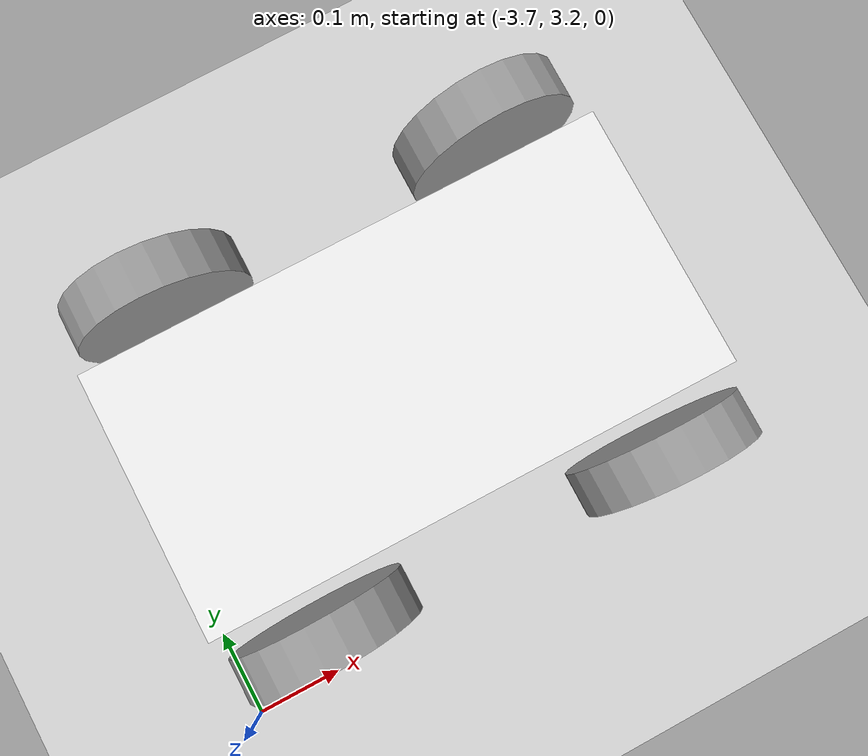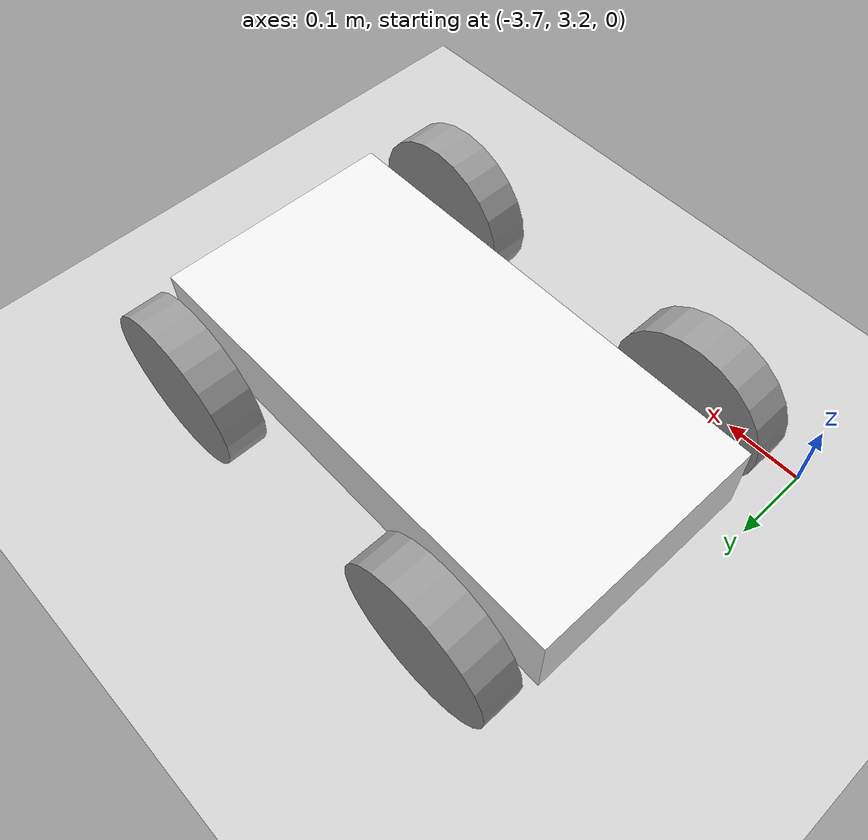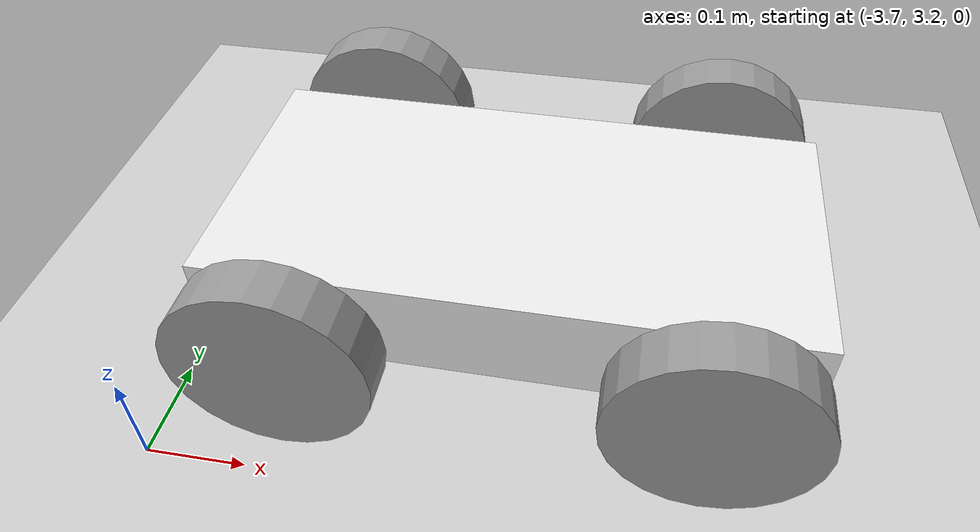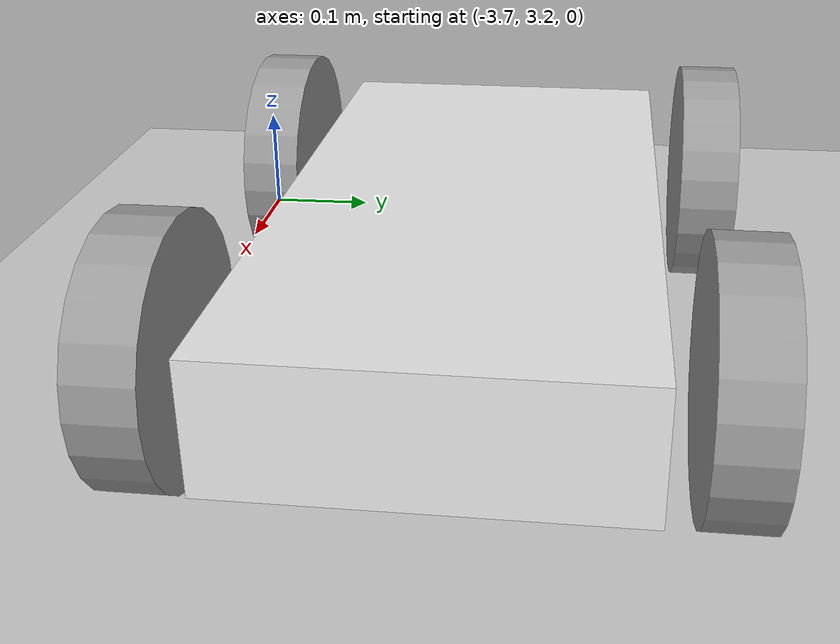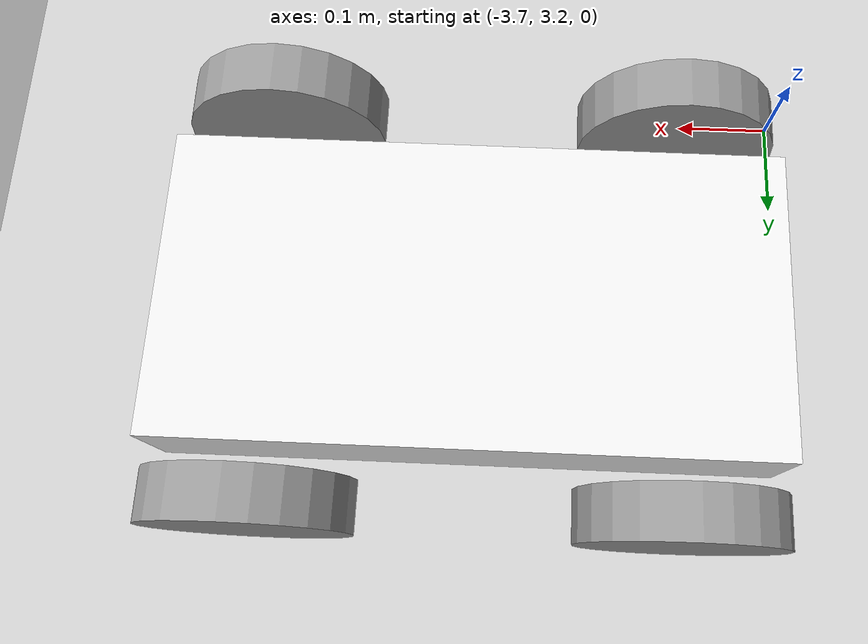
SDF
<sdf version="1.6">
 <world name="default">
  <model name="ground_plane">
   <static>1</static>
   <link name="link">
    <collision name="collision">
     <geometry><plane><normal>0 0 1</normal><size>100 100</size></plane></geometry>
     <surface>
      <contact><collide_bitmask>65535</collide_bitmask></contact>
      <friction><ode><mu>100</mu><mu2>50</mu2></ode></friction>
     </surface>
    </collision>
    <visual name="visual">
     <cast_shadows>0</cast_shadows>
     <geometry><plane><normal>0 0 1</normal><size>100 100</size></plane></geometry>
     <material>
      <script><uri>file://media/materials/scripts/gazebo.material</uri><name>Gazebo/Grey</name></script>
     </material>
    </visual>
   </link>
  </model>
  <model name="simple_4_wheeled_white_0">
   <link name="chassis">
    <pose>-0 0 0.1 0 -0 0</pose>
    <inertial>
     <mass>0.5</mass>
     <inertia>
      <ixx>0.166667</ixx>
      <ixy>0</ixy>
      <ixz>0</ixz>
      <iyy>0.166667</iyy>
      <iyz>0</iyz>
      <izz>0.166667</izz>
     </inertia>
    </inertial>
    <visual name="visual">
     <geometry><box><size>0.6 0.3 0.1</size></box></geometry>
     <material>
      <lighting>1</lighting>
      <script><uri>file://media/materials/scripts/gazebo.material</uri><name>Gazebo/White</name></script>
      <shader type="pixel"><normal_map>__default__</normal_map></shader>
      <ambient>0.9 0.9 0.9 1</ambient>
      <diffuse>0.9 0.9 0.9 1</diffuse>
      <specular>0.9 0.9 0.9 1</specular>
      <emissive>0.9 0.9 0.9 1</emissive>
     </material>
    </visual>
    <collision name="collision">
     <geometry><box><size>0.6 0.3 0.1</size></box></geometry>
     <surface>
      <friction>
       <ode><mu>1</mu><mu2>1</mu2><fdir1>0 0 0</fdir1><slip1>0</slip1><slip2>0</slip2></ode>
       <torsional>
        <coefficient>1</coefficient>
        <patch_radius>0</patch_radius>
        <surface_radius>0</surface_radius>
        <use_patch_radius>1</use_patch_radius>
        <ode><slip>0</slip></ode>
       </torsional>
      </friction>
      <bounce><restitution_coefficient>0</restitution_coefficient><threshold>1e+06</threshold></bounce>
      <contact>
       <collide_without_contact>0</collide_without_contact>
       <collide_without_contact_bitmask>1</collide_without_contact_bitmask>
       <collide_bitmask>1</collide_bitmask>
       <ode>
        <soft_cfm>0</soft_cfm>
        <soft_erp>0.2</soft_erp>
        <kp>1e+13</kp>
        <kd>1</kd>
        <max_vel>0.01</max_vel>
        <min_depth>0</min_depth>
       </ode>
       <bullet>
        <split_impulse>1</split_impulse>
        <split_impulse_penetration_threshold>-0.01</split_impulse_penetration_threshold>
        <soft_cfm>0</soft_cfm>
        <soft_erp>0.2</soft_erp>
        <kp>1e+13</kp>
        <kd>1</kd>
       </bullet>
      </contact>
     </surface>
    </collision>
   </link>
   <link name="front_left">
    <pose>0.2 0.2 0.1 1.57 -0 0</pose>
    <inertial>
     <mass>0.1</mass>
     <inertia><ixx>0.145833</ixx><ixy>0</ixy><ixz>0</ixz><iyy>0.145833</iyy><iyz>0</iyz><izz>0.125</izz></inertia>
    </inertial>
    <visual name="visual">
     <geometry><cylinder><radius>0.1</radius><length>0.05</length></cylinder></geometry>
     <material>
      <lighting>1</lighting>
      <script><uri>file://media/materials/scripts/gazebo.material</uri><name>Gazebo/Grey</name></script>
      <shader type="pixel"><normal_map>__default__</normal_map></shader>
      <ambient>0.3 0.3 0.3 1</ambient>
      <diffuse>0.7 0.7 0.7 1</diffuse>
      <specular>0.01 0.01 0.01 1</specular>
      <emissive>0 0 0 1</emissive>
     </material>
    </visual>
    <collision name="collision">
     <geometry><cylinder><radius>0.1</radius><length>0.05</length></cylinder></geometry>
     <surface>
      <friction>
       <ode><mu>1</mu><mu2>1</mu2><fdir1>0 0 0</fdir1><slip1>0</slip1><slip2>0</slip2></ode>
       <torsional>
        <coefficient>1</coefficient>
        <patch_radius>0</patch_radius>
        <surface_radius>0</surface_radius>
        <use_patch_radius>1</use_patch_radius>
        <ode><slip>0</slip></ode>
       </torsional>
      </friction>
      <bounce><restitution_coefficient>0</restitution_coefficient><threshold>1e+06</threshold></bounce>
      <contact>
       <collide_without_contact>0</collide_without_contact>
       <collide_without_contact_bitmask>1</collide_without_contact_bitmask>
       <collide_bitmask>1</collide_bitmask>
       <ode>
        <soft_cfm>0</soft_cfm>
        <soft_erp>0.2</soft_erp>
        <kp>1e+13</kp>
        <kd>1</kd>
        <max_vel>0.01</max_vel>
        <min_depth>0</min_depth>
       </ode>
       <bullet>
        <split_impulse>1</split_impulse>
        <split_impulse_penetration_threshold>-0.01</split_impulse_penetration_threshold>
        <soft_cfm>0</soft_cfm>
        <soft_erp>0.2</soft_erp>
        <kp>1e+13</kp>
        <kd>1</kd>
       </bullet>
      </contact>
     </surface>
    </collision>
   </link>
   <link name="front_right">
    <pose>0.2 -0.2 0.1 1.57 -0 0</pose>
    <inertial>
     <mass>0.1</mass>
     <inertia><ixx>0.145833</ixx><ixy>0</ixy><ixz>0</ixz><iyy>0.145833</iyy><iyz>0</iyz><izz>0.125</izz></inertia>
    </inertial>
    <visual name="visual">
     <geometry><cylinder><radius>0.1</radius><length>0.05</length></cylinder></geometry>
     <material>
      <lighting>1</lighting>
      <script><uri>file://media/materials/scripts/gazebo.material</uri><name>Gazebo/Grey</name></script>
      <shader type="pixel"><normal_map>__default__</normal_map></shader>
      <ambient>0.3 0.3 0.3 1</ambient>
      <diffuse>0.7 0.7 0.7 1</diffuse>
      <specular>0.01 0.01 0.01 1</specular>
      <emissive>0 0 0 1</emissive>
     </material>
    </visual>
    <collision name="collision">
     <geometry><cylinder><radius>0.1</radius><length>0.05</length></cylinder></geometry>
     <surface>
      <friction>
       <ode><mu>1</mu><mu2>1</mu2><fdir1>0 0 0</fdir1><slip1>0</slip1><slip2>0</slip2></ode>
       <torsional>
        <coefficient>1</coefficient>
        <patch_radius>0</patch_radius>
        <surface_radius>0</surface_radius>
        <use_patch_radius>1</use_patch_radius>
        <ode><slip>0</slip></ode>
       </torsional>
      </friction>
      <bounce><restitution_coefficient>0</restitution_coefficient><threshold>1e+06</threshold></bounce>
      <contact>
       <collide_without_contact>0</collide_without_contact>
       <collide_without_contact_bitmask>1</collide_without_contact_bitmask>
       <collide_bitmask>1</collide_bitmask>
       <ode>
        <soft_cfm>0</soft_cfm>
        <soft_erp>0.2</soft_erp>
        <kp>1e+13</kp>
        <kd>1</kd>
        <max_vel>0.01</max_vel>
        <min_depth>0</min_depth>
       </ode>
       <bullet>
        <split_impulse>1</split_impulse>
        <split_impulse_penetration_threshold>-0.01</split_impulse_penetration_threshold>
        <soft_cfm>0</soft_cfm>
        <soft_erp>0.2</soft_erp>
        <kp>1e+13</kp>
        <kd>1</kd>
       </bullet>
      </contact>
     </surface>
    </collision>
   </link>
   <link name="rear_left">
    <pose>-0.2 0.2 0.1 1.57 -0 0</pose>
    <inertial>
     <mass>0.1</mass>
     <inertia><ixx>0.145833</ixx><ixy>0</ixy><ixz>0</ixz><iyy>0.145833</iyy><iyz>0</iyz><izz>0.125</izz></inertia>
    </inertial>
    <visual name="visual">
     <geometry><cylinder><radius>0.1</radius><length>0.05</length></cylinder></geometry>
     <material>
      <lighting>1</lighting>
      <script><uri>file://media/materials/scripts/gazebo.material</uri><name>Gazebo/Grey</name></script>
      <shader type="pixel"><normal_map>__default__</normal_map></shader>
      <ambient>0.3 0.3 0.3 1</ambient>
      <diffuse>0.7 0.7 0.7 1</diffuse>
      <specular>0.01 0.01 0.01 1</specular>
      <emissive>0 0 0 1</emissive>
     </material>
    </visual>
    <collision name="collision">
     <geometry><cylinder><radius>0.1</radius><length>0.05</length></cylinder></geometry>
     <surface>
      <friction>
       <ode><mu>1</mu><mu2>1</mu2><fdir1>0 0 0</fdir1><slip1>0</slip1><slip2>0</slip2></ode>
       <torsional>
        <coefficient>1</coefficient>
        <patch_radius>0</patch_radius>
        <surface_radius>0</surface_radius>
        <use_patch_radius>1</use_patch_radius>
        <ode><slip>0</slip></ode>
       </torsional>
      </friction>
      <bounce><restitution_coefficient>0</restitution_coefficient><threshold>1e+06</threshold></bounce>
      <contact>
       <collide_without_contact>0</collide_without_contact>
       <collide_without_contact_bitmask>1</collide_without_contact_bitmask>
       <collide_bitmask>1</collide_bitmask>
       <ode>
        <soft_cfm>0</soft_cfm>
        <soft_erp>0.2</soft_erp>
        <kp>1e+13</kp>
        <kd>1</kd>
        <max_vel>0.01</max_vel>
        <min_depth>0</min_depth>
       </ode>
       <bullet>
        <split_impulse>1</split_impulse>
        <split_impulse_penetration_threshold>-0.01</split_impulse_penetration_threshold>
        <soft_cfm>0</soft_cfm>
        <soft_erp>0.2</soft_erp>
        <kp>1e+13</kp>
        <kd>1</kd>
       </bullet>
      </contact>
     </surface>
    </collision>
   </link>
   <link name="rear_right">
    <pose>-0.2 -0.2 0.1 1.57 -0 0</pose>
    <inertial>
     <mass>0.1</mass>
     <inertia><ixx>0.145833</ixx><ixy>0</ixy><ixz>0</ixz><iyy>0.145833</iyy><iyz>0</iyz><izz>0.125</izz></inertia>
    </inertial>
    <visual name="visual">
     <geometry><cylinder><radius>0.1</radius><length>0.05</length></cylinder></geometry>
     <material>
      <lighting>1</lighting>
      <script><uri>file://media/materials/scripts/gazebo.material</uri><name>Gazebo/Grey</name></script>
      <shader type="pixel"><normal_map>__default__</normal_map></shader>
      <ambient>0.3 0.3 0.3 1</ambient>
      <diffuse>0.7 0.7 0.7 1</diffuse>
      <specular>0.01 0.01 0.01 1</specular>
      <emissive>0 0 0 1</emissive>
     </material>
    </visual>
    <collision name="collision">
     <geometry><cylinder><radius>0.1</radius><length>0.05</length></cylinder></geometry>
     <surface>
      <friction>
       <ode><mu>1</mu><mu2>1</mu2><fdir1>0 0 0</fdir1><slip1>0</slip1><slip2>0</slip2></ode>
       <torsional>
        <coefficient>1</coefficient>
        <patch_radius>0</patch_radius>
        <surface_radius>0</surface_radius>
        <use_patch_radius>1</use_patch_radius>
        <ode><slip>0</slip></ode>
       </torsional>
      </friction>
      <bounce><restitution_coefficient>0</restitution_coefficient><threshold>1e+06</threshold></bounce>
      <contact>
       <collide_without_contact>0</collide_without_contact>
       <collide_without_contact_bitmask>1</collide_without_contact_bitmask>
       <collide_bitmask>1</collide_bitmask>
       <ode>
        <soft_cfm>0</soft_cfm>
        <soft_erp>0.2</soft_erp>
        <kp>1e+13</kp>
        <kd>1</kd>
        <max_vel>0.01</max_vel>
        <min_depth>0</min_depth>
       </ode>
       <bullet>
        <split_impulse>1</split_impulse>
        <split_impulse_penetration_threshold>-0.01</split_impulse_penetration_threshold>
        <soft_cfm>0</soft_cfm>
        <soft_erp>0.2</soft_erp>
        <kp>1e+13</kp>
        <kd>1</kd>
       </bullet>
      </contact>
     </surface>
    </collision>
   </link>
   <joint name="chassis_front_left" type="revolute">
    <parent>chassis</parent>
    <child>front_right</child>
    <axis>
     <xyz>0 0 1</xyz>
     <use_parent_model_frame>0</use_parent_model_frame>
     <limit>
      <lower>-1.79769e+308</lower>
      <upper>1.79769e+308</upper>
      <effort>-1</effort>
      <velocity>-1</velocity>
     </limit>
     <dynamics>
      <spring_reference>0</spring_reference>
      <spring_stiffness>0</spring_stiffness>
      <damping>0</damping>
      <friction>0</friction>
     </dynamics>
    </axis>
    <physics>
     <ode><limit><cfm>0</cfm><erp>0.2</erp></limit><suspension><cfm>0</cfm><erp>0.2</erp></suspension></ode>
    </physics>
   </joint>
   <joint name="chassis_front_right" type="revolute">
    <parent>chassis</parent>
    <child>front_left</child>
    <axis>
     <xyz>0 0 1</xyz>
     <use_parent_model_frame>0</use_parent_model_frame>
     <limit>
      <lower>-1.79769e+308</lower>
      <upper>1.79769e+308</upper>
      <effort>-1</effort>
      <velocity>-1</velocity>
     </limit>
     <dynamics>
      <spring_reference>0</spring_reference>
      <spring_stiffness>0</spring_stiffness>
      <damping>0</damping>
      <friction>0</friction>
     </dynamics>
    </axis>
    <physics>
     <ode><limit><cfm>0</cfm><erp>0.2</erp></limit><suspension><cfm>0</cfm><erp>0.2</erp></suspension></ode>
    </physics>
   </joint>
   <joint name="chassis_rear_left" type="revolute">
    <parent>chassis</parent>
    <child>rear_left</child>
    <axis>
     <xyz>0 0 1</xyz>
     <use_parent_model_frame>0</use_parent_model_frame>
     <limit>
      <lower>-1.79769e+308</lower>
      <upper>1.79769e+308</upper>
      <effort>-1</effort>
      <velocity>-1</velocity>
     </limit>
     <dynamics>
      <spring_reference>0</spring_reference>
      <spring_stiffness>0</spring_stiffness>
      <damping>0</damping>
      <friction>0</friction>
     </dynamics>
    </axis>
    <physics>
     <ode><limit><cfm>0</cfm><erp>0.2</erp></limit><suspension><cfm>0</cfm><erp>0.2</erp></suspension></ode>
    </physics>
   </joint>
   <joint name="chassis_rear_right" type="revolute">
    <parent>chassis</parent>
    <child>rear_right</child>
    <axis>
     <xyz>0 0 1</xyz>
     <use_parent_model_frame>0</use_parent_model_frame>
     <limit>
      <lower>-1.79769e+308</lower>
      <upper>1.79769e+308</upper>
      <effort>-1</effort>
      <velocity>-1</velocity>
     </limit>
     <dynamics>
      <spring_reference>0</spring_reference>
      <spring_stiffness>0</spring_stiffness>
      <damping>0</damping>
      <friction>0</friction>
     </dynamics>
    </axis>
    <physics>
     <ode><limit><cfm>0</cfm><erp>0.2</erp></limit><suspension><cfm>0</cfm><erp>0.2</erp></suspension></ode>
    </physics>
   </joint>
   <static>0</static>
   <pose>-3.3725 3.45646 2e-05 -1e-06 2e-06 -0.006383</pose>
  </model>
 </world>
</sdf>
